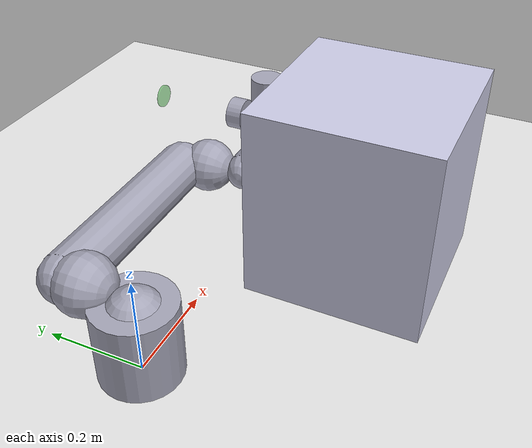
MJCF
<mujoco model="ur5e_contact_nomesh_scene">
  <compiler angle="radian" autolimits="true"/>
  <option integrator="implicitfast" gravity="0 0 -9.81"/>

  <default>
    <default class="ur5e">
      <joint axis="0 1 0" range="-6.28319 6.28319" armature="0.1"/>
      <general gaintype="fixed" biastype="affine" ctrlrange="-6.2831 6.2831" gainprm="5000" biasprm="0 -5000 -1000" forcerange="-150 150"/>
      <default class="size3">
        <default class="size3_limited">
          <joint range="-3.1415 3.1415"/>
          <general ctrlrange="-3.1415 3.1415"/>
        </default>
      </default>
      <default class="size1">
        <general gainprm="1000" biasprm="0 -1000 -200" forcerange="-28 28"/>
      </default>
      <default class="collision">
        <geom group="1" rgba="0.65 0.65 0.72 1"/>
        <default class="eef_collision">
          <geom type="cylinder"/>
        </default>
      </default>
      <site size="0.001" rgba="1 0 0 1" group="4"/>
    </default>
  </default>

  <worldbody>
    <light name="spotlight" mode="targetbodycom" target="wrist_2_link" pos="0 -1 2"/>

    <geom name="contact_table" type="box" pos="0.45 -0.25 0.20" size="0.18 0.18 0.20"
          rgba="0.8 0.8 0.9 1" friction="0.5 0.005 0.0001" contype="1" conaffinity="1"/>
    <geom name="floor" type="plane" size="2 2 0.1" pos="0 0 0"
          rgba="0.9 0.9 0.9 1" contype="1" conaffinity="1"/>

    <body name="base" pos="0 0 0" childclass="ur5e">
      <inertial mass="4.0" pos="0 0 0" diaginertia="0.00443333156 0.00443333156 0.0072"/>
      <geom class="collision" type="cylinder" pos="0 0 0.08" size="0.08 0.08"/>

      <body name="shoulder_link" pos="0 0 0.163">
        <inertial mass="3.7" pos="0 0 0" diaginertia="0.0102675 0.0102675 0.00666"/>
        <joint name="shoulder_pan_joint" class="size3" axis="0 0 1"/>
        <geom class="collision" size="0.06 0.06" pos="0 0 -0.04"/>

        <body name="upper_arm_link" pos="0 0.138 0" quat="1 0 1 0">
          <inertial mass="8.393" pos="0 0 0.2125" diaginertia="0.133886 0.133886 0.0151074"/>
          <joint name="shoulder_lift_joint" class="size3"/>
          <geom class="collision" pos="0 -0.04 0" quat="1 1 0 0" size="0.06 0.06"/>
          <geom class="collision" type="capsule" size="0.05 0.2" pos="0 0 0.2"/>

          <body name="forearm_link" pos="0 -0.131 0.425">
            <inertial mass="2.275" pos="0 0 0.196" diaginertia="0.0311796 0.0311796 0.004095"/>
            <joint name="elbow_joint" class="size3_limited"/>
            <geom class="collision" pos="0 0.08 0" quat="1 1 0 0" size="0.055 0.06"/>
            <geom class="collision" type="capsule" size="0.038 0.19" pos="0 0 0.2"/>

            <body name="wrist_1_link" pos="0 0 0.392" quat="1 0 1 0">
              <inertial mass="1.219" pos="0 0.127 0" diaginertia="0.0025599 0.0025599 0.0021942"/>
              <joint name="wrist_1_joint" class="size1"/>
              <geom class="collision" pos="0 0.05 0" quat="1 1 0 0" size="0.04 0.07"/>

              <body name="wrist_2_link" pos="0 0.127 0">
                <inertial mass="1.219" pos="0 0 0.1" diaginertia="0.0025599 0.0025599 0.0021942"/>
                <joint name="wrist_2_joint" axis="0 0 1" class="size1"/>
                <geom class="collision" type="cylinder" size="0.04 0.06" pos="0 0 0.04"/>
                <geom class="collision" pos="0 0.02 0.1" quat="1 1 0 0" size="0.04 0.04"/>

                <body name="wrist_3_link" pos="0 0 0.1">
                  <inertial mass="0.1889" pos="0 0.0771683 0" quat="1 0 0 1" diaginertia="0.000132134 9.90863e-05 9.90863e-05"/>
                  <joint name="wrist_3_joint" class="size1"/>
                  <geom class="eef_collision" pos="0 0.08 0" quat="1 1 0 0" size="0.04 0.02"/>
                  <site name="attachment_site" pos="0 0.1 0" quat="-1 1 0 0"/>

                  <body name="flange" pos="0 0.090 0" quat="0.707107 -0.707107 0 0">
                    <body name="tool0" pos="0 0 0.221">
                      <site name="ee_site" type="cylinder" size="0.0375 0.0001" pos="0 0 0" euler="0 0 0" rgba="1 0 0 1"/>
                      <geom name="ee_contact_disk" type="cylinder" size="0.03 0.0025"
                            pos="0 0 0" quat="1 0 0 0"
                            rgba="0.2 0.7 0.2 0.5" contype="1" conaffinity="1"
                            friction="0.8 0.005 0.0001" mass="0.05"
                            solref="0.01 1.0" solimp="0.9 0.95 0.001 0.5 2"/>
                    </body>
                  </body>
                </body>
              </body>
            </body>
          </body>
        </body>
      </body>
    </body>
  </worldbody>

  <actuator>
    <general class="size3" name="shoulder_pan" joint="shoulder_pan_joint"/>
    <general class="size3" name="shoulder_lift" joint="shoulder_lift_joint"/>
    <general class="size3_limited" name="elbow" joint="elbow_joint"/>
    <general class="size1" name="wrist_1" joint="wrist_1_joint"/>
    <general class="size1" name="wrist_2" joint="wrist_2_joint"/>
    <general class="size1" name="wrist_3" joint="wrist_3_joint"/>
  </actuator>

  <sensor>
    <force name="ee_force_sensor" site="ee_site"/>
    <torque name="ee_torque_sensor" site="ee_site"/>
  </sensor>
</mujoco>
